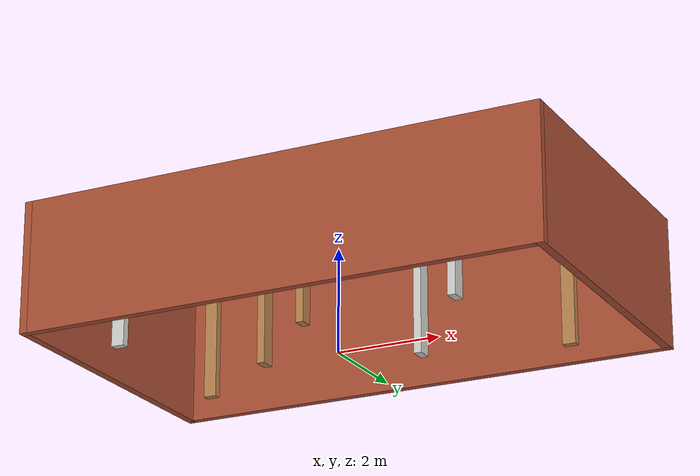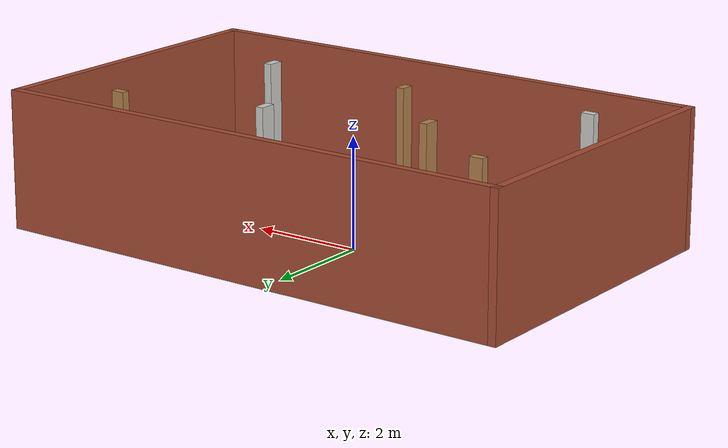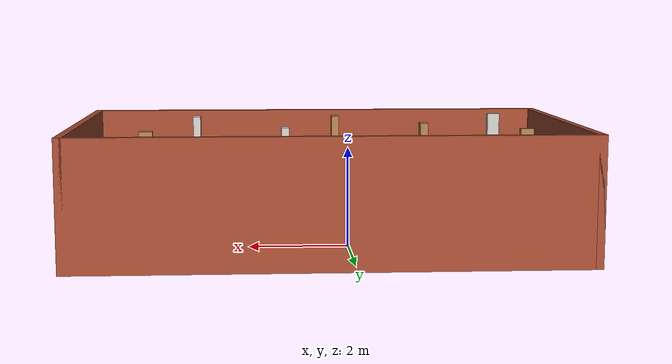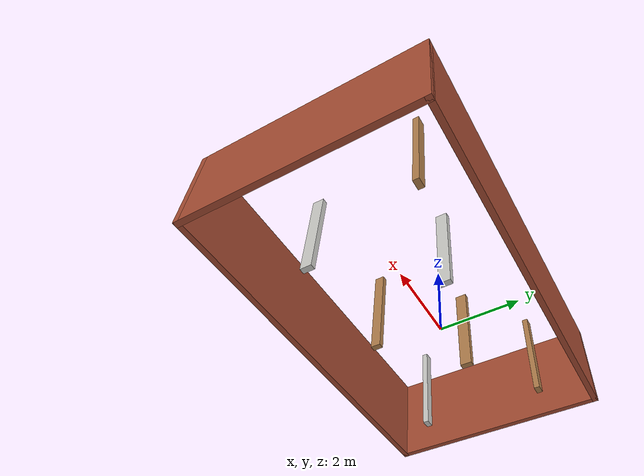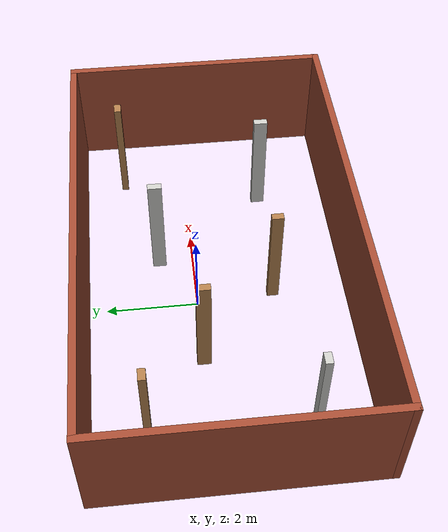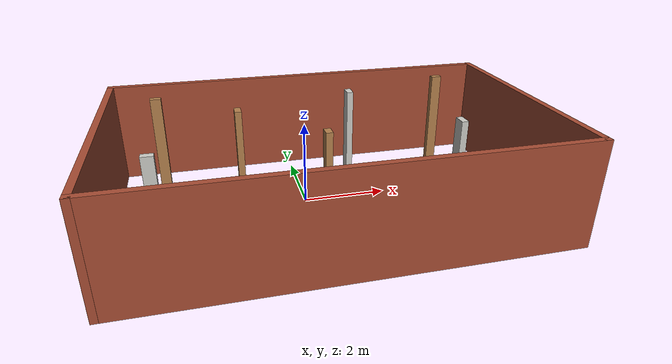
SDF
<?xml version='1.0'?>
<sdf version='1.7'>
  <model name='room'>
    <pose>0.451294 -0.470681 0 0 -0 0</pose>
    <link name='Wall_11'>
      <collision name='Wall_11_Collision'>
        <geometry>
          <box>
            <size>6 0.15 2.5</size>
          </box>
        </geometry>
        <pose>0 0 1.25 0 -0 0</pose>
      </collision>
      <visual name='Wall_11_Visual'>
        <pose>0 0 1.25 0 -0 0</pose>
        <geometry>
          <box>
            <size>6 0.15 2.5</size>
          </box>
        </geometry>
        <material>
          <script>
            <uri>file://media/materials/scripts/gazebo.material</uri>
            <name>Gazebo/Bricks</name>
          </script>
          <ambient>1 1 1 1</ambient>
        </material>
        <meta>
          <layer>0</layer>
        </meta>
      </visual>
      <pose>4.925 0 0 0 -0 -1.5708</pose>
    </link>
    <link name='Wall_13'>
      <collision name='Wall_13_Collision'>
        <geometry>
          <box>
            <size>10 0.15 2.5</size>
          </box>
        </geometry>
        <pose>0 0 1.25 0 -0 0</pose>
      </collision>
      <visual name='Wall_13_Visual'>
        <pose>0 0 1.25 0 -0 0</pose>
        <geometry>
          <box>
            <size>10 0.15 2.5</size>
          </box>
        </geometry>
        <material>
          <script>
            <uri>file://media/materials/scripts/gazebo.material</uri>
            <name>Gazebo/Bricks</name>
          </script>
          <ambient>1 1 1 1</ambient>
        </material>
        <meta>
          <layer>0</layer>
        </meta>
      </visual>
      <pose>0 -2.925 0 0 -0 3.14159</pose>
    </link>
    <link name='Wall_14'>
      <collision name='Wall_14_Collision'>
        <geometry>
          <box>
            <size>6 0.15 2.5</size>
          </box>
        </geometry>
        <pose>0 0 1.25 0 -0 0</pose>
      </collision>
      <visual name='Wall_14_Visual'>
        <pose>0 0 1.25 0 -0 0</pose>
        <geometry>
          <box>
            <size>6 0.15 2.5</size>
          </box>
        </geometry>
        <material>
          <script>
            <uri>file://media/materials/scripts/gazebo.material</uri>
            <name>Gazebo/Bricks</name>
          </script>
          <ambient>1 1 1 1</ambient>
        </material>
        <meta>
          <layer>0</layer>
        </meta>
      </visual>
      <pose>-4.925 0 0 0 -0 1.5708</pose>
    </link>
    <link name='Wall_16'>
      <collision name='Wall_16_Collision'>
        <geometry>
          <box>
            <size>0.25 0.15 2.5</size>
          </box>
        </geometry>
        <pose>0 0 1.25 0 -0 0</pose>
      </collision>
      <visual name='Wall_16_Visual'>
        <pose>0 0 1.25 0 -0 0</pose>
        <geometry>
          <box>
            <size>0.25 0.15 2.5</size>
          </box>
        </geometry>
        <material>
          <script>
            <uri>file://media/materials/scripts/gazebo.material</uri>
            <name>Gazebo/Wood</name>
          </script>
          <ambient>1 1 1 1</ambient>
        </material>
        <meta>
          <layer>0</layer>
        </meta>
      </visual>
      <pose>-3.79062 1.71819 0 0 -0 0</pose>
    </link>
    <link name='Wall_20'>
      <collision name='Wall_20_Collision'>
        <geometry>
          <box>
            <size>0.25 0.15 2.5</size>
          </box>
        </geometry>
        <pose>0 0 1.25 0 -0 0</pose>
      </collision>
      <visual name='Wall_20_Visual'>
        <pose>0 0 1.25 0 -0 0</pose>
        <geometry>
          <box>
            <size>0.25 0.15 2.5</size>
          </box>
        </geometry>
        <material>
          <script>
            <uri>file://media/materials/scripts/gazebo.material</uri>
            <name>Gazebo/CeilingTiled</name>
          </script>
          <ambient>1 1 1 1</ambient>
        </material>
        <meta>
          <layer>0</layer>
        </meta>
      </visual>
      <pose>-3.79062 -1.60493 0 0 -0 0</pose>
    </link>
    <link name='Wall_28'>
      <collision name='Wall_28_Collision'>
        <geometry>
          <box>
            <size>0.3 0.15 2.5</size>
          </box>
        </geometry>
        <pose>0 0 1.25 0 -0 0</pose>
      </collision>
      <visual name='Wall_28_Visual'>
        <pose>0 0 1.25 0 -0 0</pose>
        <geometry>
          <box>
            <size>0.3 0.15 2.5</size>
          </box>
        </geometry>
        <material>
          <script>
            <uri>file://media/materials/scripts/gazebo.material</uri>
            <name>Gazebo/CeilingTiled</name>
          </script>
          <ambient>1 1 1 1</ambient>
        </material>
        <meta>
          <layer>0</layer>
        </meta>
      </visual>
      <pose>2.6482 -1.26757 0 0 -0 1.5708</pose>
    </link>
    <link name='Wall_32'>
      <collision name='Wall_32_Collision'>
        <geometry>
          <box>
            <size>0.3 0.15 2.5</size>
          </box>
        </geometry>
        <pose>0 0 1.25 0 -0 0</pose>
      </collision>
      <visual name='Wall_32_Visual'>
        <pose>0 0 1.25 0 -0 0</pose>
        <geometry>
          <box>
            <size>0.3 0.15 2.5</size>
          </box>
        </geometry>
        <material>
          <script>
            <uri>file://media/materials/scripts/gazebo.material</uri>
            <name>Gazebo/Wood</name>
          </script>
          <ambient>1 1 1 1</ambient>
        </material>
        <meta>
          <layer>0</layer>
        </meta>
      </visual>
      <pose>-1.96918 0.463941 0 0 -0 1.5708</pose>
    </link>
    <link name='Wall_34'>
      <collision name='Wall_34_Collision'>
        <geometry>
          <box>
            <size>0.25 0.15 2.5</size>
          </box>
        </geometry>
        <pose>0 0 1.25 0 -0 0</pose>
      </collision>
      <visual name='Wall_34_Visual'>
        <pose>0 0 1.25 0 -0 0</pose>
        <geometry>
          <box>
            <size>0.25 0.15 2.5</size>
          </box>
        </geometry>
        <material>
          <script>
            <uri>file://media/materials/scripts/gazebo.material</uri>
            <name>Gazebo/Wood</name>
          </script>
          <ambient>1 1 1 1</ambient>
        </material>
        <meta>
          <layer>0</layer>
        </meta>
      </visual>
      <pose>-0.290133 -1.22262 0 0 -0 1.5708</pose>
    </link>
    <link name='Wall_36'>
      <collision name='Wall_36_Collision'>
        <geometry>
          <box>
            <size>0.3 0.15 2.5</size>
          </box>
        </geometry>
        <pose>0 0 1.25 0 -0 0</pose>
      </collision>
      <visual name='Wall_36_Visual'>
        <pose>0 0 1.25 0 -0 0</pose>
        <geometry>
          <box>
            <size>0.3 0.15 2.5</size>
          </box>
        </geometry>
        <material>
          <script>
            <uri>file://media/materials/scripts/gazebo.material</uri>
            <name>Gazebo/CeilingTiled</name>
          </script>
          <ambient>1 1 1 1</ambient>
        </material>
        <meta>
          <layer>0</layer>
        </meta>
      </visual>
      <pose>0.829231 1.2335 0 0 -0 1.5708</pose>
    </link>
    <link name='Wall_38'>
      <collision name='Wall_38_Collision'>
        <geometry>
          <box>
            <size>0.25 0.15 2.5</size>
          </box>
        </geometry>
        <pose>0 0 1.25 0 -0 0</pose>
      </collision>
      <visual name='Wall_38_Visual'>
        <pose>0 0 1.25 0 -0 0</pose>
        <geometry>
          <box>
            <size>0.25 0.15 2.5</size>
          </box>
        </geometry>
        <material>
          <script>
            <uri>file://media/materials/scripts/gazebo.material</uri>
            <name>Gazebo/Wood</name>
          </script>
          <ambient>1 1 1 1</ambient>
        </material>
        <meta>
          <layer>0</layer>
        </meta>
      </visual>
      <pose>3.45027 1.92807 0 0 -0 0</pose>
    </link>
    <link name='Wall_9'>
      <collision name='Wall_9_Collision'>
        <geometry>
          <box>
            <size>10 0.15 2.5</size>
          </box>
        </geometry>
        <pose>0 0 1.25 0 -0 0</pose>
      </collision>
      <visual name='Wall_9_Visual'>
        <pose>0 0 1.25 0 -0 0</pose>
        <geometry>
          <box>
            <size>10 0.15 2.5</size>
          </box>
        </geometry>
        <material>
          <script>
            <uri>file://media/materials/scripts/gazebo.material</uri>
            <name>Gazebo/Bricks</name>
          </script>
          <ambient>1 1 1 1</ambient>
        </material>
        <meta>
          <layer>0</layer>
        </meta>
      </visual>
      <pose>0 2.925 0 0 -0 0</pose>
    </link>
    <static>1</static>
  </model>
</sdf>
